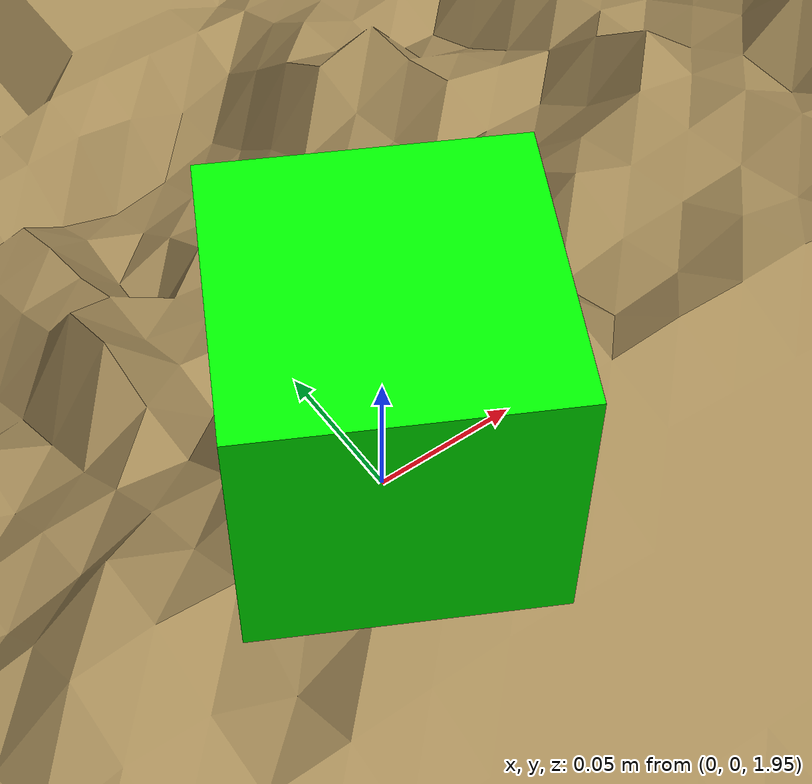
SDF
<sdf version="1.6">
  <world name="sonar_seabed_world">

    <plugin filename="gz-sim-physics-system" name="gz::sim::systems::Physics"/>
    <plugin filename="gz-sim-scene-broadcaster-system" name="gz::sim::systems::SceneBroadcaster"/>
    <plugin filename="gz-sim-user-commands-system" name="gz::sim::systems::UserCommands"/>
    <plugin
      filename="gz-sim-sensors-system"
      name="gz::sim::systems::Sensors">
      <render_engine>ogre2</render_engine>
    </plugin>

    <scene>
      <ambient>0.3 0.3 0.3 1.0</ambient>
      <background>0.5 0.7 0.9 1.0</background>
      <shadows>false</shadows>
    </scene>

    <light name="sun_light" type="directional">
      <pose>0 0 100 0 0 0</pose>
      <diffuse>1 1 1 1</diffuse>
      <specular>0.3 0.3 0.3 1</specular>
      <direction>-0.5 0.3 -0.8</direction>
      <cast_shadows>false</cast_shadows>
    </light>

    <light name="fill_light" type="directional">
      <pose>0 0 50 0 0 0</pose>
      <diffuse>0.3 0.3 0.3 1</diffuse>
      <specular>0 0 0 1</specular>
      <direction>0.5 -0.3 -0.5</direction>
      <cast_shadows>false</cast_shadows>
    </light>

    <model name="seabed_dem">
      <static>true</static>
      <pose>-20.875 -6.625 0 0 0 0</pose>
      <link name="terrain_link">
        <collision name="terrain_collision">
          <geometry>
            <mesh>
              <uri>/home/safayat/gazebo_worlds/seabed_dem.obj</uri>
            </mesh>
          </geometry>
        </collision>
        <visual name="terrain_visual">
          <geometry>
            <mesh>
              <uri>/home/safayat/gazebo_worlds/seabed_dem.obj</uri>
            </mesh>
          </geometry>
          <material>
            <ambient>0.5 0.4 0.3 1</ambient>
            <diffuse>0.65 0.55 0.35 1</diffuse>
            <specular>0.05 0.05 0.05 1</specular>
          </material>
        </visual>
      </link>
    </model>

    <model name="model_with_lidar">
      <pose>0.0005 -0.0018 2 0 0 2.657</pose>

      <link name="link">
        <pose>0 0 0 0 0 0</pose>

        <inertial>
          <mass>0.1</mass>
          <inertia>
            <ixx>0.000166667</ixx>
            <iyy>0.000166667</iyy>
            <izz>0.000166667</izz>
          </inertia>
        </inertial>

        <collision name="collision">
          <geometry>
            <box>
              <size>0.1 0.1 0.1</size>
            </box>
          </geometry>
        </collision>

        <visual name="visual">
          <geometry>
            <box>
              <size>0.1 0.1 0.1</size>
            </box>
          </geometry>
          <material>
            <ambient>0 1 0 1</ambient>
            <diffuse>0 1 0 1</diffuse>
          </material>
        </visual>

        <sensor name="gpu_lidar" type="gpu_lidar">
          <pose>0 0 0 0 1.5708 0</pose>
          <topic>lidar</topic>
          <update_rate>10</update_rate>

          <lidar>
            <scan>
              <horizontal>
                <samples>5</samples>
                <resolution>1</resolution>
                <min_angle>-0.593412</min_angle>
                <max_angle>-0.279253</max_angle>
              </horizontal>

              <vertical>
                <samples>1</samples>
                <resolution>1</resolution>
                <min_angle>0</min_angle>
                <max_angle>0</max_angle>
              </vertical>
            </scan>

            <range>
              <min>0.08</min>
              <max>20.0</max>
              <resolution>0.01</resolution>
            </range>
          </lidar>

          <always_on>1</always_on>
          <visualize>true</visualize>
        </sensor>
      </link>

      <static>true</static>
    </model>

  </world>
</sdf>
